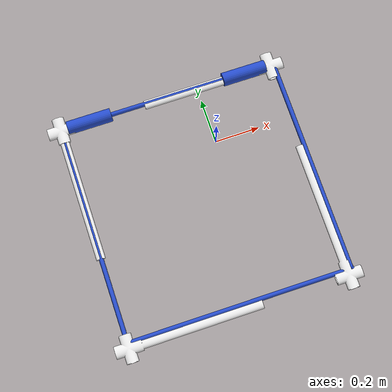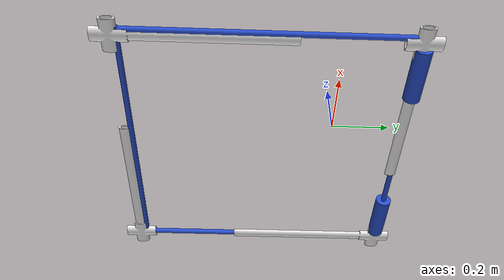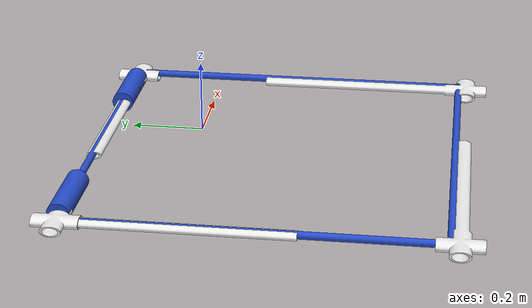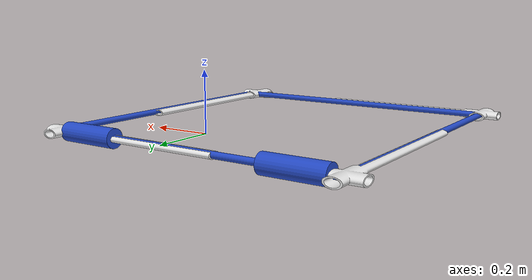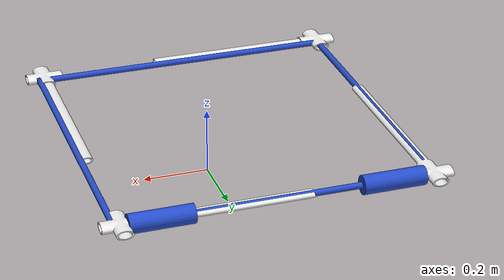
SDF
<?xml version='1.0'?>
<sdf version='1.7'>
  <model name='launch_station'>
    <link name='part_1'>
      <inertial>
        <pose>0 0 0 0 -0 0</pose>
        <mass>1e+12</mass>
        <inertia>
          <ixx>4.53417e+10</ixx>
          <ixy>0</ixy>
          <ixz>0</ixz>
          <iyy>5.66667e+10</iyy>
          <iyz>0</iyz>
          <izz>9.53417e+10</izz>
        </inertia>
      </inertial>
      <self_collide>0</self_collide>
      <enable_wind>0</enable_wind>
      <kinematic>0</kinematic>
      <pose>-0.087877 -0.216714 0 1.5708 -0 0</pose>
      <gravity>1</gravity>
      <is_static>1</is_static>
      <frame name='part_1_frame'>
        <pose>0 0 0 0 -0 0</pose>
      </frame>
      <visual name='assembly_visual'>
        <pose>0.02 0 0 0 -0 0</pose>
        <geometry>
          <mesh>
            <uri>/home/eer/Documents/Software_2024/ROS2/models/smart_cable_area/smart_cable_area_visual.stl</uri>
            <scale>1.85 1 1.9</scale>
          </mesh>
        </geometry>
        <material>
          <shader type='pixel'>
            <normal_map>__default__</normal_map>
          </shader>
          <script>
            <name>Gazebo/White</name>
            <uri>__default__</uri>
          </script>
          <ambient>1 1 1 1</ambient>
          <diffuse>1 1 1 1</diffuse>
          <specular>1 1 1 1</specular>
          <emissive>0 0 0 1</emissive>
        </material>
        <transparency>0</transparency>
        <cast_shadows>1</cast_shadows>
      </visual>
      <collision name='collision_4'>
        <laser_retro>0</laser_retro>
        <max_contacts>10</max_contacts>
        <pose>0.02 0 0 0 -0 0</pose>
        <geometry>
          <mesh>
            <uri>/home/eer/Documents/Software_2024/ROS2/models/smart_cable_area/smart_cable_area_collision.stl</uri>
            <scale>1.85 1 1.9</scale>
          </mesh>
        </geometry>
        <surface>
          <friction>
            <ode>
              <mu>1</mu>
              <mu2>1</mu2>
              <fdir1>0 0 0</fdir1>
              <slip1>0</slip1>
              <slip2>0</slip2>
            </ode>
            <torsional>
              <coefficient>1</coefficient>
              <patch_radius>0</patch_radius>
              <surface_radius>0</surface_radius>
              <use_patch_radius>1</use_patch_radius>
              <ode>
                <slip>0</slip>
              </ode>
            </torsional>
          </friction>
          <bounce>
            <restitution_coefficient>0</restitution_coefficient>
            <threshold>1e+06</threshold>
          </bounce>
          <contact>
            <collide_without_contact>0</collide_without_contact>
            <collide_without_contact_bitmask>1</collide_without_contact_bitmask>
            <collide_bitmask>1</collide_bitmask>
            <ode>
              <soft_cfm>0</soft_cfm>
              <soft_erp>0.2</soft_erp>
              <kp>1e+13</kp>
              <kd>1</kd>
              <max_vel>0.01</max_vel>
              <min_depth>0</min_depth>
            </ode>
            <bullet>
              <split_impulse>1</split_impulse>
              <split_impulse_penetration_threshold>-0.01</split_impulse_penetration_threshold>
              <soft_cfm>0</soft_cfm>
              <soft_erp>0.2</soft_erp>
              <kp>1e+13</kp>
              <kd>1</kd>
            </bullet>
          </contact>
        </surface>
      </collision>
    </link>
    <link name='link_0'>
      <inertial>
        <mass>1</mass>
        <inertia>
          <ixx>0.145833</ixx>
          <ixy>0</ixy>
          <ixz>0</ixz>
          <iyy>0.145833</iyy>
          <iyz>0</iyz>
          <izz>0.125</izz>
        </inertia>
        <pose>0 0 0 0 -0 0</pose>
      </inertial>
      <pose>0 0 0 0 -0 0</pose>
      <gravity>1</gravity>
      <self_collide>0</self_collide>
      <kinematic>0</kinematic>
      <enable_wind>0</enable_wind>
      <visual name='visual'>
        <pose>-0.13 0.26 0.017 3.14159 1.57079 3.14159</pose>
        <geometry>
          <cylinder>
            <radius>0.01</radius>
            <length>1</length>
          </cylinder>
        </geometry>
        <material>
          <lighting>1</lighting>
          <script>
            <uri>file://media/materials/scripts/gazebo.material</uri>
            <name>Gazebo/Blue</name>
          </script>
          <shader type='pixel'>
            <normal_map>__default__</normal_map>
          </shader>
          <ambient>0.1 0.1 0.3 1</ambient>
          <diffuse>0.3 0.3 0.7 1</diffuse>
          <specular>0 0.7 0.01 1</specular>
          <emissive>0 0 0 1</emissive>
        </material>
        <transparency>0</transparency>
        <cast_shadows>1</cast_shadows>
      </visual>
      <collision name='collision'>
        <laser_retro>0</laser_retro>
        <max_contacts>10</max_contacts>
        <pose>-0.13 0.26 0.017 3.14159 1.57079 3.14159</pose>
        <geometry>
          <cylinder>
            <radius>0.01</radius>
            <length>1</length>
          </cylinder>
        </geometry>
        <surface>
          <friction>
            <ode>
              <mu>1</mu>
              <mu2>1</mu2>
              <fdir1>0 0 0</fdir1>
              <slip1>0</slip1>
              <slip2>0</slip2>
            </ode>
            <torsional>
              <coefficient>1</coefficient>
              <patch_radius>0</patch_radius>
              <surface_radius>0</surface_radius>
              <use_patch_radius>1</use_patch_radius>
              <ode>
                <slip>0</slip>
              </ode>
            </torsional>
          </friction>
          <bounce>
            <restitution_coefficient>0</restitution_coefficient>
            <threshold>1e+06</threshold>
          </bounce>
          <contact>
            <collide_without_contact>0</collide_without_contact>
            <collide_without_contact_bitmask>1</collide_without_contact_bitmask>
            <collide_bitmask>1</collide_bitmask>
            <ode>
              <soft_cfm>0</soft_cfm>
              <soft_erp>0.2</soft_erp>
              <kp>1e+13</kp>
              <kd>1</kd>
              <max_vel>0.01</max_vel>
              <min_depth>0</min_depth>
            </ode>
            <bullet>
              <split_impulse>1</split_impulse>
              <split_impulse_penetration_threshold>-0.01</split_impulse_penetration_threshold>
              <soft_cfm>0</soft_cfm>
              <soft_erp>0.2</soft_erp>
              <kp>1e+13</kp>
              <kd>1</kd>
            </bullet>
          </contact>
        </surface>
      </collision>
    </link>
    <link name='link_0_clone'>
      <inertial>
        <mass>1</mass>
        <inertia>
          <ixx>0.145833</ixx>
          <ixy>0</ixy>
          <ixz>0</ixz>
          <iyy>0.145833</iyy>
          <iyz>0</iyz>
          <izz>0.125</izz>
        </inertia>
        <pose>0 0 0 0 -0 0</pose>
      </inertial>
      <pose>0 -0.52 0 0 -0 0</pose>
      <gravity>1</gravity>
      <self_collide>0</self_collide>
      <kinematic>0</kinematic>
      <enable_wind>0</enable_wind>
      <visual name='visual'>
        <pose>-0.13 -0.2 0.017 3.14159 1.57079 3.14159</pose>
        <geometry>
          <cylinder>
            <radius>0.01</radius>
            <length>1</length>
          </cylinder>
        </geometry>
        <material>
          <lighting>1</lighting>
          <script>
            <uri>file://media/materials/scripts/gazebo.material</uri>
            <name>Gazebo/Blue</name>
          </script>
          <shader type='pixel'>
            <normal_map>__default__</normal_map>
          </shader>
          <ambient>0.1 0.1 0.3 1</ambient>
          <diffuse>0.3 0.3 0.7 1</diffuse>
          <specular>0 0.7 0.01 1</specular>
          <emissive>0 0 0 1</emissive>
        </material>
        <transparency>0</transparency>
        <cast_shadows>1</cast_shadows>
      </visual>
      <collision name='collision'>
        <laser_retro>0</laser_retro>
        <max_contacts>10</max_contacts>
        <pose>-0.13 -0.2 0.017 3.14159 1.57079 3.14159</pose>
        <geometry>
          <cylinder>
            <radius>0.01</radius>
            <length>1</length>
          </cylinder>
        </geometry>
        <surface>
          <friction>
            <ode>
              <mu>1</mu>
              <mu2>1</mu2>
              <fdir1>0 0 0</fdir1>
              <slip1>0</slip1>
              <slip2>0</slip2>
            </ode>
            <torsional>
              <coefficient>1</coefficient>
              <patch_radius>0</patch_radius>
              <surface_radius>0</surface_radius>
              <use_patch_radius>1</use_patch_radius>
              <ode>
                <slip>0</slip>
              </ode>
            </torsional>
          </friction>
          <bounce>
            <restitution_coefficient>0</restitution_coefficient>
            <threshold>1e+06</threshold>
          </bounce>
          <contact>
            <collide_without_contact>0</collide_without_contact>
            <collide_without_contact_bitmask>1</collide_without_contact_bitmask>
            <collide_bitmask>1</collide_bitmask>
            <ode>
              <soft_cfm>0</soft_cfm>
              <soft_erp>0.2</soft_erp>
              <kp>1e+13</kp>
              <kd>1</kd>
              <max_vel>0.01</max_vel>
              <min_depth>0</min_depth>
            </ode>
            <bullet>
              <split_impulse>1</split_impulse>
              <split_impulse_penetration_threshold>-0.01</split_impulse_penetration_threshold>
              <soft_cfm>0</soft_cfm>
              <soft_erp>0.2</soft_erp>
              <kp>1e+13</kp>
              <kd>1</kd>
            </bullet>
          </contact>
        </surface>
      </collision>
    </link>
    <link name='link_0_clone_0'>
      <inertial>
        <mass>1</mass>
        <inertia>
          <ixx>0.145833</ixx>
          <ixy>0</ixy>
          <ixz>0</ixz>
          <iyy>0.145833</iyy>
          <iyz>0</iyz>
          <izz>0.125</izz>
        </inertia>
        <pose>0 0 0 0 -0 0</pose>
      </inertial>
      <pose>0 0 0 0 -0 0</pose>
      <gravity>1</gravity>
      <self_collide>0</self_collide>
      <kinematic>0</kinematic>
      <enable_wind>0</enable_wind>
      <visual name='visual'>
        <pose>0.22 0.26 0.017 3.14159 1.57079 3.14159</pose>
        <geometry>
          <cylinder>
            <radius>0.03</radius>
            <length>0.2</length>
          </cylinder>
        </geometry>
        <material>
          <lighting>1</lighting>
          <script>
            <uri>file://media/materials/scripts/gazebo.material</uri>
            <name>Gazebo/Blue</name>
          </script>
          <shader type='pixel'>
            <normal_map>__default__</normal_map>
          </shader>
          <ambient>0.1 0.1 0.3 1</ambient>
          <diffuse>0.3 0.3 0.7 1</diffuse>
          <specular>0 0.7 0.01 1</specular>
          <emissive>0 0 0 1</emissive>
        </material>
        <transparency>0</transparency>
        <cast_shadows>1</cast_shadows>
      </visual>
      <collision name='collision'>
        <laser_retro>0</laser_retro>
        <max_contacts>10</max_contacts>
        <pose>0.22 0.26 0.017 3.14159 1.57079 3.14159</pose>
        <geometry>
          <cylinder>
            <radius>0.03</radius>
            <length>0.2</length>
          </cylinder>
        </geometry>
        <surface>
          <friction>
            <ode>
              <mu>1</mu>
              <mu2>1</mu2>
              <fdir1>0 0 0</fdir1>
              <slip1>0</slip1>
              <slip2>0</slip2>
            </ode>
            <torsional>
              <coefficient>1</coefficient>
              <patch_radius>0</patch_radius>
              <surface_radius>0</surface_radius>
              <use_patch_radius>1</use_patch_radius>
              <ode>
                <slip>0</slip>
              </ode>
            </torsional>
          </friction>
          <bounce>
            <restitution_coefficient>0</restitution_coefficient>
            <threshold>1e+06</threshold>
          </bounce>
          <contact>
            <collide_without_contact>0</collide_without_contact>
            <collide_without_contact_bitmask>1</collide_without_contact_bitmask>
            <collide_bitmask>1</collide_bitmask>
            <ode>
              <soft_cfm>0</soft_cfm>
              <soft_erp>0.2</soft_erp>
              <kp>1e+13</kp>
              <kd>1</kd>
              <max_vel>0.01</max_vel>
              <min_depth>0</min_depth>
            </ode>
            <bullet>
              <split_impulse>1</split_impulse>
              <split_impulse_penetration_threshold>-0.01</split_impulse_penetration_threshold>
              <soft_cfm>0</soft_cfm>
              <soft_erp>0.2</soft_erp>
              <kp>1e+13</kp>
              <kd>1</kd>
            </bullet>
          </contact>
        </surface>
      </collision>
    </link>
    <link name='link_0_clone_0_clone'>
      <inertial>
        <mass>1</mass>
        <inertia>
          <ixx>0.145833</ixx>
          <ixy>0</ixy>
          <ixz>0</ixz>
          <iyy>0.145833</iyy>
          <iyz>0</iyz>
          <izz>0.125</izz>
        </inertia>
        <pose>0 0 0 0 -0 0</pose>
      </inertial>
      <pose>0 0 0 0 -0 0</pose>
      <gravity>1</gravity>
      <self_collide>0</self_collide>
      <kinematic>0</kinematic>
      <enable_wind>0</enable_wind>
      <visual name='visual'>
        <pose>-0.5 0.26 0.017 3.14159 1.57079 3.14159</pose>
        <geometry>
          <cylinder>
            <radius>0.03</radius>
            <length>0.2</length>
          </cylinder>
        </geometry>
        <material>
          <lighting>1</lighting>
          <script>
            <uri>file://media/materials/scripts/gazebo.material</uri>
            <name>Gazebo/Blue</name>
          </script>
          <shader type='pixel'>
            <normal_map>__default__</normal_map>
          </shader>
          <ambient>0.1 0.1 0.3 1</ambient>
          <diffuse>0.3 0.3 0.7 1</diffuse>
          <specular>0 0.7 0.01 1</specular>
          <emissive>0 0 0 1</emissive>
        </material>
        <transparency>0</transparency>
        <cast_shadows>1</cast_shadows>
      </visual>
      <collision name='collision'>
        <laser_retro>0</laser_retro>
        <max_contacts>10</max_contacts>
        <pose>-0.5 0.26 0.017 3.14159 1.57079 3.14159</pose>
        <geometry>
          <cylinder>
            <radius>0.03</radius>
            <length>0.2</length>
          </cylinder>
        </geometry>
        <surface>
          <friction>
            <ode>
              <mu>1</mu>
              <mu2>1</mu2>
              <fdir1>0 0 0</fdir1>
              <slip1>0</slip1>
              <slip2>0</slip2>
            </ode>
            <torsional>
              <coefficient>1</coefficient>
              <patch_radius>0</patch_radius>
              <surface_radius>0</surface_radius>
              <use_patch_radius>1</use_patch_radius>
              <ode>
                <slip>0</slip>
              </ode>
            </torsional>
          </friction>
          <bounce>
            <restitution_coefficient>0</restitution_coefficient>
            <threshold>1e+06</threshold>
          </bounce>
          <contact>
            <collide_without_contact>0</collide_without_contact>
            <collide_without_contact_bitmask>1</collide_without_contact_bitmask>
            <collide_bitmask>1</collide_bitmask>
            <ode>
              <soft_cfm>0</soft_cfm>
              <soft_erp>0.2</soft_erp>
              <kp>1e+13</kp>
              <kd>1</kd>
              <max_vel>0.01</max_vel>
              <min_depth>0</min_depth>
            </ode>
            <bullet>
              <split_impulse>1</split_impulse>
              <split_impulse_penetration_threshold>-0.01</split_impulse_penetration_threshold>
              <soft_cfm>0</soft_cfm>
              <soft_erp>0.2</soft_erp>
              <kp>1e+13</kp>
              <kd>1</kd>
            </bullet>
          </contact>
        </surface>
      </collision>
    </link>
    <link name='link_0_clone_clone'>
      <inertial>
        <mass>1</mass>
        <inertia>
          <ixx>0.145833</ixx>
          <ixy>0</ixy>
          <ixz>0</ixz>
          <iyy>0.145833</iyy>
          <iyz>0</iyz>
          <izz>0.125</izz>
        </inertia>
        <pose>0 0 0 0 -0 0</pose>
      </inertial>
      <pose>0.16 -0.1 0 0 -0 1.5708</pose>
      <gravity>1</gravity>
      <self_collide>0</self_collide>
      <kinematic>0</kinematic>
      <enable_wind>0</enable_wind>
      <visual name='visual'>
        <pose>-0.13 -0.2 0.017 3.14159 1.57079 3.14159</pose>
        <geometry>
          <cylinder>
            <radius>0.01</radius>
            <length>1</length>
          </cylinder>
        </geometry>
        <material>
          <lighting>1</lighting>
          <script>
            <uri>file://media/materials/scripts/gazebo.material</uri>
            <name>Gazebo/Blue</name>
          </script>
          <shader type='pixel'>
            <normal_map>__default__</normal_map>
          </shader>
          <ambient>0.1 0.1 0.3 1</ambient>
          <diffuse>0.3 0.3 0.7 1</diffuse>
          <specular>0 0.7 0.01 1</specular>
          <emissive>0 0 0 1</emissive>
        </material>
        <transparency>0</transparency>
        <cast_shadows>1</cast_shadows>
      </visual>
      <collision name='collision'>
        <laser_retro>0</laser_retro>
        <max_contacts>10</max_contacts>
        <pose>-0.13 -0.2 0.017 3.14159 1.57079 3.14159</pose>
        <geometry>
          <cylinder>
            <radius>0.01</radius>
            <length>1</length>
          </cylinder>
        </geometry>
        <surface>
          <friction>
            <ode>
              <mu>1</mu>
              <mu2>1</mu2>
              <fdir1>0 0 0</fdir1>
              <slip1>0</slip1>
              <slip2>0</slip2>
            </ode>
            <torsional>
              <coefficient>1</coefficient>
              <patch_radius>0</patch_radius>
              <surface_radius>0</surface_radius>
              <use_patch_radius>1</use_patch_radius>
              <ode>
                <slip>0</slip>
              </ode>
            </torsional>
          </friction>
          <bounce>
            <restitution_coefficient>0</restitution_coefficient>
            <threshold>1e+06</threshold>
          </bounce>
          <contact>
            <collide_without_contact>0</collide_without_contact>
            <collide_without_contact_bitmask>1</collide_without_contact_bitmask>
            <collide_bitmask>1</collide_bitmask>
            <ode>
              <soft_cfm>0</soft_cfm>
              <soft_erp>0.2</soft_erp>
              <kp>1e+13</kp>
              <kd>1</kd>
              <max_vel>0.01</max_vel>
              <min_depth>0</min_depth>
            </ode>
            <bullet>
              <split_impulse>1</split_impulse>
              <split_impulse_penetration_threshold>-0.01</split_impulse_penetration_threshold>
              <soft_cfm>0</soft_cfm>
              <soft_erp>0.2</soft_erp>
              <kp>1e+13</kp>
              <kd>1</kd>
            </bullet>
          </contact>
        </surface>
      </collision>
    </link>
    <link name='link_0_clone_clone_0'>
      <inertial>
        <mass>1</mass>
        <inertia>
          <ixx>0.145833</ixx>
          <ixy>0</ixy>
          <ixz>0</ixz>
          <iyy>0.145833</iyy>
          <iyz>0</iyz>
          <izz>0.125</izz>
        </inertia>
        <pose>0 0 0 0 -0 0</pose>
      </inertial>
      <pose>-0.36 -0.1 0 0 -0 1.5708</pose>
      <gravity>1</gravity>
      <self_collide>0</self_collide>
      <kinematic>0</kinematic>
      <enable_wind>0</enable_wind>
      <visual name='visual'>
        <pose>-0.13 0.27 0.017 3.14159 1.57079 3.14159</pose>
        <geometry>
          <cylinder>
            <radius>0.01</radius>
            <length>1</length>
          </cylinder>
        </geometry>
        <material>
          <lighting>1</lighting>
          <script>
            <uri>file://media/materials/scripts/gazebo.material</uri>
            <name>Gazebo/Blue</name>
          </script>
          <shader type='pixel'>
            <normal_map>__default__</normal_map>
          </shader>
          <ambient>0.1 0.1 0.3 1</ambient>
          <diffuse>0.3 0.3 0.7 1</diffuse>
          <specular>0 0.7 0.01 1</specular>
          <emissive>0 0 0 1</emissive>
        </material>
        <transparency>0</transparency>
        <cast_shadows>1</cast_shadows>
      </visual>
      <collision name='collision'>
        <laser_retro>0</laser_retro>
        <max_contacts>10</max_contacts>
        <pose>-0.13 0.27 0.017 3.14159 1.57079 3.14159</pose>
        <geometry>
          <cylinder>
            <radius>0.01</radius>
            <length>1</length>
          </cylinder>
        </geometry>
        <surface>
          <friction>
            <ode>
              <mu>1</mu>
              <mu2>1</mu2>
              <fdir1>0 0 0</fdir1>
              <slip1>0</slip1>
              <slip2>0</slip2>
            </ode>
            <torsional>
              <coefficient>1</coefficient>
              <patch_radius>0</patch_radius>
              <surface_radius>0</surface_radius>
              <use_patch_radius>1</use_patch_radius>
              <ode>
                <slip>0</slip>
              </ode>
            </torsional>
          </friction>
          <bounce>
            <restitution_coefficient>0</restitution_coefficient>
            <threshold>1e+06</threshold>
          </bounce>
          <contact>
            <collide_without_contact>0</collide_without_contact>
            <collide_without_contact_bitmask>1</collide_without_contact_bitmask>
            <collide_bitmask>1</collide_bitmask>
            <ode>
              <soft_cfm>0</soft_cfm>
              <soft_erp>0.2</soft_erp>
              <kp>1e+13</kp>
              <kd>1</kd>
              <max_vel>0.01</max_vel>
              <min_depth>0</min_depth>
            </ode>
            <bullet>
              <split_impulse>1</split_impulse>
              <split_impulse_penetration_threshold>-0.01</split_impulse_penetration_threshold>
              <soft_cfm>0</soft_cfm>
              <soft_erp>0.2</soft_erp>
              <kp>1e+13</kp>
              <kd>1</kd>
            </bullet>
          </contact>
        </surface>
      </collision>
    </link>
    <static>1</static>
    <allow_auto_disable>1</allow_auto_disable>
  </model>
</sdf>
